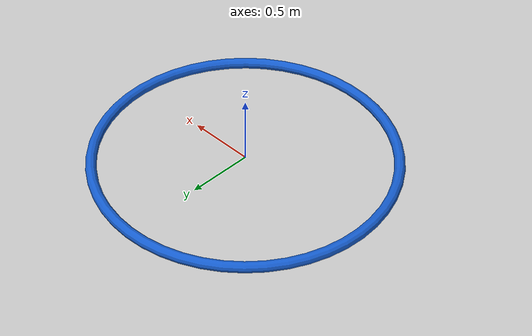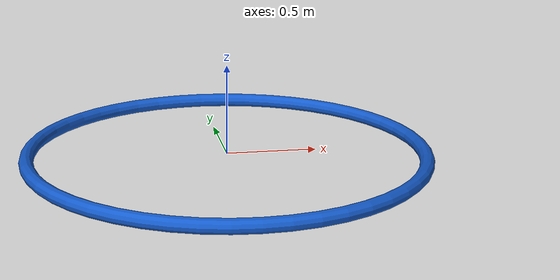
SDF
<?xml  version="1.0" ?>
<sdf version="1.5">

<model name='torus_arc'>
    <pose>0 0 0 0 0 0</pose>
    <link name='link'>
    <gravity>false</gravity>
    <inertial>
        <mass>1</mass>
        <inertia>
        <ixx>0.166667</ixx>
        <ixy>0</ixy>
        <ixz>0</ixz>
        <iyy>0.166667</iyy>
        <iyz>0</iyz>
        <izz>0.166667</izz>
        </inertia>
        <pose>0 0 0 0 -0 0</pose>
    </inertial>
    <visual name='torus_arc_mesh'>
        <geometry>
        <mesh>
            <uri>model://torus_arc/meshes/torus.dae</uri>
            <scale>1.0 1.0 1.0</scale>
        </mesh>
        </geometry>
    </visual>
    <self_collide>0</self_collide>
    <enable_wind>0</enable_wind>
    <kinematic>0</kinematic>
    </link>
</model>
</sdf>
